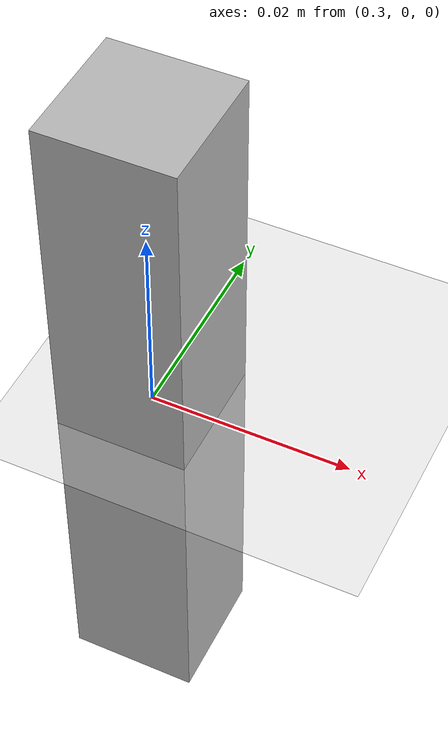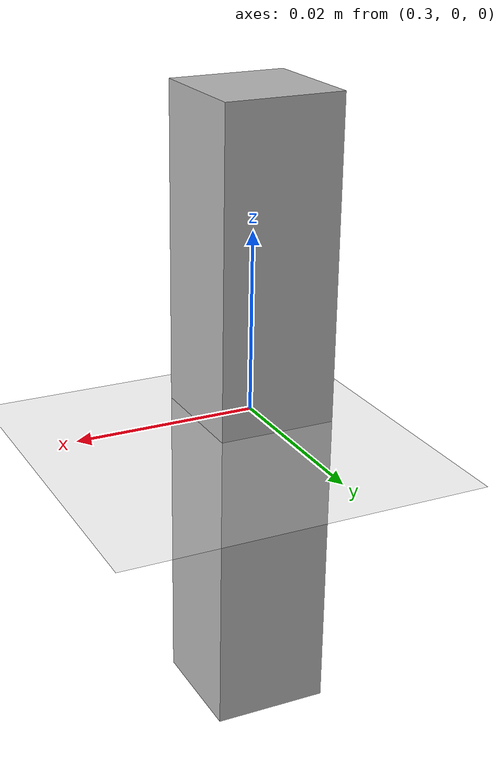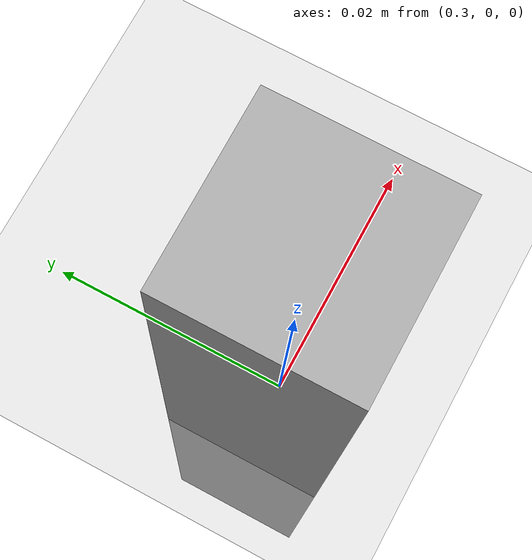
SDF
<?xml version="1.0"?>
<sdf version="1.4">

	<world name="default">
		<include>
			<uri>model://sun</uri>
		</include>
		<include>
			<uri>model://ground_plane</uri>
		</include>

		<physics type="ode">
			<real_time_update_rate>1000.0</real_time_update_rate>
			<gravity>0.0 0.0 -9.81</gravity>
		</physics>

		<!-- The box model | might need to be refractored -->
		<model name="my_model">
			<pose>0.3 0 0 0 0 0</pose>
			<static>false</static>
			<link name="box">
				<inertial>
					<mass>10</mass>
					<inertia>
						<ixx>0.00009375</ixx>
						<ixy>0.0</ixy>
						<ixz>0.0</ixz>
						<iyy>0.000483</iyy>
						<iyz>0.0</iyz>
						<izz>0.00009375</izz>
					</inertia>
				</inertial>
				<collision name="collision">
					<geometry>
						<box>
							<size>0.013 0.013 0.07</size>
						</box>
					</geometry>
					<surface>
						<bounce>
							<restitution_coefficient>0</restitution_coefficient>
						</bounce>
					</surface>
				</collision>
				<visual name="visual">
					<geometry>
						<box>
							<size>0.013 0.013 0.07</size>
						</box>
					</geometry>
					<surface>
						<bounce>
							<restitution_coefficient>0</restitution_coefficient>
						</bounce>
						<friction>
							<ode>
								<kp>200</kp>
								<kd>1.0</kd>
								<mu>100.0</mu>
								<max_vel>0.5 </max_vel>
								<mu2>1.0</mu2>
								<slip1>0</slip1>
								<slip2>0</slip2>
								<minDepth>0.01</minDepth>
							</ode>
						</friction>
					</surface>
				</visual>
			</link>
		</model>

		<gazebo reference="box">
			<implicitSpringDamper>1</implicitSpringDamper>
			<mu1>100.0</mu1>
			<mu2>1.0</mu2>
			<fdir1>-1 0 0</fdir1>
			<minDepth>0.01</minDepth>
		</gazebo>

	</world>
</sdf>
